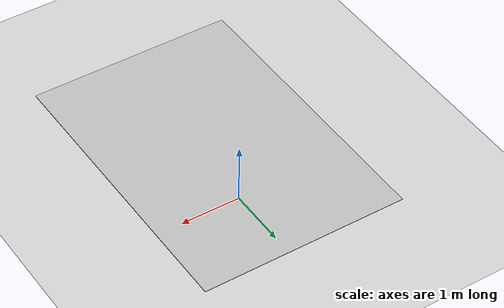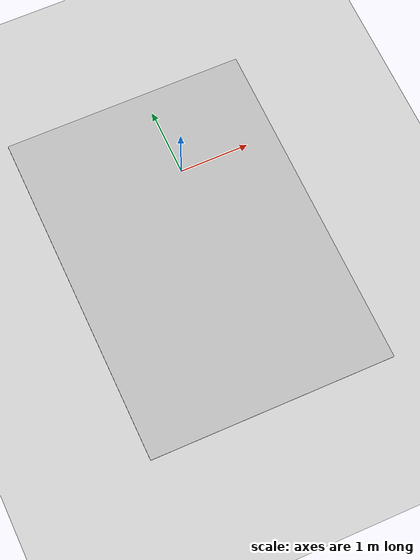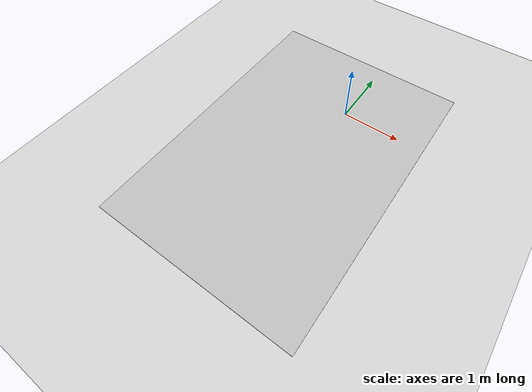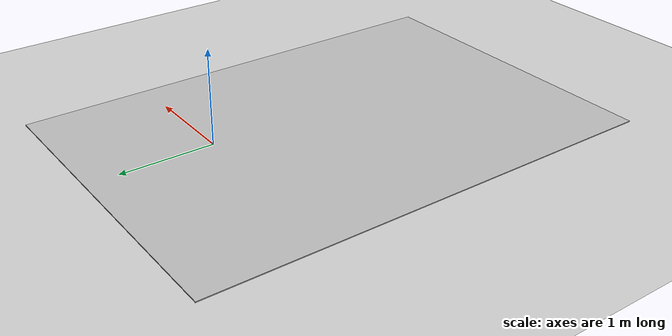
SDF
<sdf version="1.7">
 <world name="default">
  <light name="sun" type="directional">
   <pose>0 0 10 0 -0 0</pose>
   <diffuse>0.8 0.8 0.8 1</diffuse>
   <specular>0.2 0.2 0.2 1</specular>
   <attenuation>
    <range>1000</range>
    <constant>0.9</constant>
    <linear>0.01</linear>
    <quadratic>0.001</quadratic>
   </attenuation>
   <direction>-0.5 0.1 -0.9</direction>
   <spot><inner_angle>0</inner_angle><outer_angle>0</outer_angle><falloff>0</falloff></spot>
  </light>
  <model name="ground_plane">
   <static>1</static>
   <link name="link">
    <collision name="collision">
     <geometry><plane><normal>0 0 1</normal><size>100 100</size></plane></geometry>
     <surface><friction><ode><mu>100</mu><mu2>50</mu2></ode></friction></surface>
    </collision>
    <visual name="visual">
     <cast_shadows>0</cast_shadows>
     <geometry><plane><normal>0 0 1</normal><size>100 100</size></plane></geometry>
     <material>
      <script><uri>file://media/materials/scripts/gazebo.material</uri><name>Gazebo/Grey</name></script>
     </material>
    </visual>
   </link>
  </model>
  <gravity>0 0 -9.8</gravity>
  <magnetic_field>6e-06 2.3e-05 -4.2e-05</magnetic_field>
  <atmosphere type="adiabatic"/>
  <physics type="ode">
   <max_step_size>0.001</max_step_size>
   <real_time_factor>1</real_time_factor>
   <real_time_update_rate>1000</real_time_update_rate>
  </physics>
  <scene><ambient>0.4 0.4 0.4 1</ambient><background>0.7 0.7 0.7 1</background><shadows>1</shadows></scene>
  <spherical_coordinates>
   <surface_model>EARTH_WGS84</surface_model>
   <latitude_deg>0</latitude_deg>
   <longitude_deg>0</longitude_deg>
   <elevation>0</elevation>
   <heading_deg>0</heading_deg>
  </spherical_coordinates>
  <model name="nueva_cuadricula">
   <static>1</static>
   <link name="link">
    <visual name="visual">
     <geometry>
      <mesh><uri>model://industrial/meshes/nueva_cuadricula.dae</uri><scale>1 10 7</scale></mesh>
     </geometry>
    </visual>
   </link>
   <pose>1.44558 -1.16075 0 0 -1.57065 0</pose>
  </model>
  <light name="user_point_light_0" type="point">
   <pose>-1.59238 -3.0824 1 0 -0 0</pose>
   <diffuse>0.5 0.5 0.5 1</diffuse>
   <specular>0.1 0.1 0.1 1</specular>
   <attenuation>
    <range>20</range>
    <constant>0.5</constant>
    <linear>0.01</linear>
    <quadratic>0.001</quadratic>
   </attenuation>
   <cast_shadows>0</cast_shadows>
   <direction>0 0 -1</direction>
  </light>
  <light name="user_point_light_1" type="point">
   <pose>-1.4405 0.864596 1 0 -0 0</pose>
   <diffuse>0.5 0.5 0.5 1</diffuse>
   <specular>0.1 0.1 0.1 1</specular>
   <attenuation>
    <range>20</range>
    <constant>0.5</constant>
    <linear>0.01</linear>
    <quadratic>0.001</quadratic>
   </attenuation>
   <cast_shadows>0</cast_shadows>
   <direction>0 0 -1</direction>
  </light>
  <light name="user_point_light_2" type="point">
   <pose>-1.65616 -1.25646 1 0 -0 0</pose>
   <diffuse>0.5 0.5 0.5 1</diffuse>
   <specular>0.1 0.1 0.1 1</specular>
   <attenuation>
    <range>20</range>
    <constant>0.5</constant>
    <linear>0.01</linear>
    <quadratic>0.001</quadratic>
   </attenuation>
   <cast_shadows>0</cast_shadows>
   <direction>0 0 -1</direction>
  </light>
  <light name="user_point_light_3" type="point">
   <pose>0.652659 -2.66704 1 0 -0 0</pose>
   <diffuse>0.5 0.5 0.5 1</diffuse>
   <specular>0.1 0.1 0.1 1</specular>
   <attenuation>
    <range>20</range>
    <constant>0.5</constant>
    <linear>0.01</linear>
    <quadratic>0.001</quadratic>
   </attenuation>
   <cast_shadows>0</cast_shadows>
   <direction>0 0 -1</direction>
  </light>
  <light name="user_point_light_4" type="point">
   <pose>0.54837 -0.986508 1 0 -0 0</pose>
   <diffuse>0.5 0.5 0.5 1</diffuse>
   <specular>0.1 0.1 0.1 1</specular>
   <attenuation>
    <range>20</range>
    <constant>0.5</constant>
    <linear>0.01</linear>
    <quadratic>0.001</quadratic>
   </attenuation>
   <cast_shadows>0</cast_shadows>
   <direction>0 0 -1</direction>
  </light>
  <light name="user_point_light_5" type="point">
   <pose>0.669719 0.832646 1 0 -0 0</pose>
   <diffuse>0.5 0.5 0.5 1</diffuse>
   <specular>0.1 0.1 0.1 1</specular>
   <attenuation>
    <range>20</range>
    <constant>0.5</constant>
    <linear>0.01</linear>
    <quadratic>0.001</quadratic>
   </attenuation>
   <cast_shadows>0</cast_shadows>
   <direction>0 0 -1</direction>
  </light>
 </world>
</sdf>
